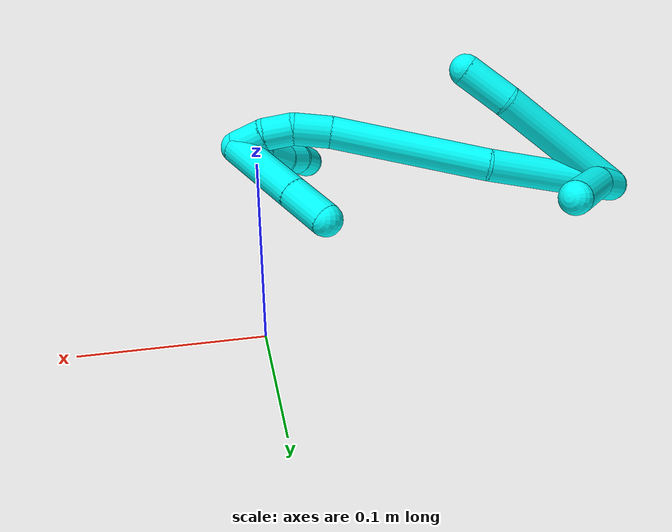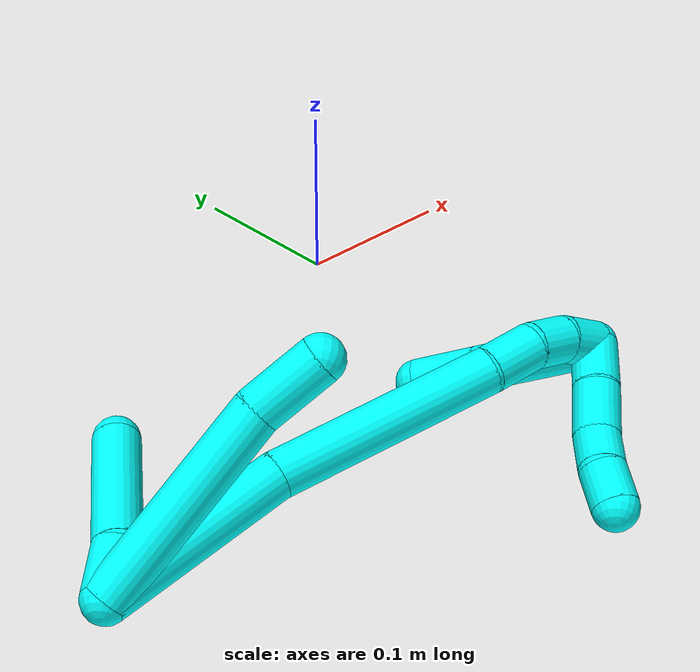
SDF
<sdf version="1.7">
 <world name="default">
  <model name="3">
   <static>0</static>
   <link name="3">
    <collision name="collision-cylinder-e_1_2_8">
     <pose>-0.018829 -0.035523 0.038641 0.743376 -0.344425 -0.135395</pose>
     <geometry><cylinder><radius>0.0125</radius><length>0.111526</length></cylinder></geometry>
     <surface>
      <friction><ode><mu>1.16</mu><mu2>1.16</mu2><slip1>0</slip1><slip2>0</slip2></ode></friction>
      <contact><ode><kp>1e+06</kp><kd>1</kd><max_vel>0</max_vel><min_depth>0.001</min_depth></ode></contact>
     </surface>
    </collision>
    <visual name="visual-cylinder-e_1_2_8">
     <pose>-0.018829 -0.035523 0.038641 0.743376 -0.344425 -0.135395</pose>
     <geometry><cylinder><radius>0.0125</radius><length>0.111526</length></cylinder></geometry>
     <material><ambient>0.003922 1 0.996078 1</ambient></material>
    </visual>
    <collision name="collision-cylinder-e_2_8_6">
     <pose>-0.043737 -0.086447 0.087075 1.00447 -0.321567 -0.177676</pose>
     <geometry><cylinder><radius>0.0125</radius><length>0.038474</length></cylinder></geometry>
     <surface>
      <friction><ode><mu>1.16</mu><mu2>1.16</mu2><slip1>0</slip1><slip2>0</slip2></ode></friction>
      <contact><ode><kp>1e+06</kp><kd>1</kd><max_vel>0</max_vel><min_depth>0.001</min_depth></ode></contact>
     </surface>
    </collision>
    <visual name="visual-cylinder-e_2_8_6">
     <pose>-0.043737 -0.086447 0.087075 1.00447 -0.321567 -0.177676</pose>
     <geometry><cylinder><radius>0.0125</radius><length>0.038474</length></cylinder></geometry>
     <material><ambient>0.003922 1 0.996078 1</ambient></material>
    </visual>
    <collision name="collision-cylinder-e_1_2_9">
     <pose>8.7e-05 -0.000165 0.014457 0.011401 0.006035 3.4e-05</pose>
     <geometry><cylinder><radius>0.0125</radius><length>0.028916</length></cylinder></geometry>
     <surface>
      <friction><ode><mu>1.16</mu><mu2>1.16</mu2><slip1>0</slip1><slip2>0</slip2></ode></friction>
      <contact><ode><kp>1e+06</kp><kd>1</kd><max_vel>0</max_vel><min_depth>0.001</min_depth></ode></contact>
     </surface>
    </collision>
    <visual name="visual-cylinder-e_1_2_9">
     <pose>8.7e-05 -0.000165 0.014457 0.011401 0.006035 3.4e-05</pose>
     <geometry><cylinder><radius>0.0125</radius><length>0.028916</length></cylinder></geometry>
     <material><ambient>0.003922 1 0.996078 1</ambient></material>
    </visual>
    <collision name="collision-cylinder-e_2_9_5">
     <pose>0.005131 0.007471 0.063233 -0.223488 0.139916 -0.015726</pose>
     <geometry><cylinder><radius>0.0125</radius><length>0.071084</length></cylinder></geometry>
     <surface>
      <friction><ode><mu>1.16</mu><mu2>1.16</mu2><slip1>0</slip1><slip2>0</slip2></ode></friction>
      <contact><ode><kp>1e+06</kp><kd>1</kd><max_vel>0</max_vel><min_depth>0.001</min_depth></ode></contact>
     </surface>
    </collision>
    <visual name="visual-cylinder-e_2_9_5">
     <pose>0.005131 0.007471 0.063233 -0.223488 0.139916 -0.015726</pose>
     <geometry><cylinder><radius>0.0125</radius><length>0.071084</length></cylinder></geometry>
     <material><ambient>0.003922 1 0.996078 1</ambient></material>
    </visual>
    <collision name="collision-cylinder-e_1_2_10">
     <pose>0.006396 -0.034796 0.037524 0.747701 0.124335 0.04883</pose>
     <geometry><cylinder><radius>0.0125</radius><length>0.103145</length></cylinder></geometry>
     <surface>
      <friction><ode><mu>1.16</mu><mu2>1.16</mu2><slip1>0</slip1><slip2>0</slip2></ode></friction>
      <contact><ode><kp>1e+06</kp><kd>1</kd><max_vel>0</max_vel><min_depth>0.001</min_depth></ode></contact>
     </surface>
    </collision>
    <visual name="visual-cylinder-e_1_2_10">
     <pose>0.006396 -0.034796 0.037524 0.747701 0.124335 0.04883</pose>
     <geometry><cylinder><radius>0.0125</radius><length>0.103145</length></cylinder></geometry>
     <material><ambient>0.003922 1 0.996078 1</ambient></material>
    </visual>
    <collision name="collision-cylinder-e_2_10_11">
     <pose>0.019204 -0.11953 0.109859 0.962018 0.104947 0.054808</pose>
     <geometry><cylinder><radius>0.0125</radius><length>0.122422</length></cylinder></geometry>
     <surface>
      <friction><ode><mu>1.16</mu><mu2>1.16</mu2><slip1>0</slip1><slip2>0</slip2></ode></friction>
      <contact><ode><kp>1e+06</kp><kd>1</kd><max_vel>0</max_vel><min_depth>0.001</min_depth></ode></contact>
     </surface>
    </collision>
    <visual name="visual-cylinder-e_2_10_11">
     <pose>0.019204 -0.11953 0.109859 0.962018 0.104947 0.054808</pose>
     <geometry><cylinder><radius>0.0125</radius><length>0.122422</length></cylinder></geometry>
     <material><ambient>0.003922 1 0.996078 1</ambient></material>
    </visual>
    <collision name="collision-cylinder-e_3_11_12">
     <pose>0.028618 -0.179898 0.154274 0.826675 0.208704 0.091808</pose>
     <geometry><cylinder><radius>0.0125</radius><length>0.028983</length></cylinder></geometry>
     <surface>
      <friction><ode><mu>1.16</mu><mu2>1.16</mu2><slip1>0</slip1><slip2>0</slip2></ode></friction>
      <contact><ode><kp>1e+06</kp><kd>1</kd><max_vel>0</max_vel><min_depth>0.001</min_depth></ode></contact>
     </surface>
    </collision>
    <visual name="visual-cylinder-e_3_11_12">
     <pose>0.028618 -0.179898 0.154274 0.826675 0.208704 0.091808</pose>
     <geometry><cylinder><radius>0.0125</radius><length>0.028983</length></cylinder></geometry>
     <material><ambient>0.003922 1 0.996078 1</ambient></material>
    </visual>
    <collision name="collision-cylinder-e_4_12_13">
     <pose>0.036941 -0.197924 0.170013 0.891242 0.498801 0.242136</pose>
     <geometry><cylinder><radius>0.0125</radius><length>0.022242</length></cylinder></geometry>
     <surface>
      <friction><ode><mu>1.16</mu><mu2>1.16</mu2><slip1>0</slip1><slip2>0</slip2></ode></friction>
      <contact><ode><kp>1e+06</kp><kd>1</kd><max_vel>0</max_vel><min_depth>0.001</min_depth></ode></contact>
     </surface>
    </collision>
    <visual name="visual-cylinder-e_4_12_13">
     <pose>0.036941 -0.197924 0.170013 0.891242 0.498801 0.242136</pose>
     <geometry><cylinder><radius>0.0125</radius><length>0.022242</length></cylinder></geometry>
     <material><ambient>0.003922 1 0.996078 1</ambient></material>
    </visual>
    <collision name="collision-cylinder-e_5_13_1">
     <pose>0.050161 -0.212945 0.18029 1.06222 0.748858 0.45372</pose>
     <geometry><cylinder><radius>0.0125</radius><length>0.023209</length></cylinder></geometry>
     <surface>
      <friction><ode><mu>1.16</mu><mu2>1.16</mu2><slip1>0</slip1><slip2>0</slip2></ode></friction>
      <contact><ode><kp>1e+06</kp><kd>1</kd><max_vel>0</max_vel><min_depth>0.001</min_depth></ode></contact>
     </surface>
    </collision>
    <visual name="visual-cylinder-e_5_13_1">
     <pose>0.050161 -0.212945 0.18029 1.06222 0.748858 0.45372</pose>
     <geometry><cylinder><radius>0.0125</radius><length>0.023209</length></cylinder></geometry>
     <material><ambient>0.003922 1 0.996078 1</ambient></material>
    </visual>
    <collision name="collision-cylinder-e_1_1_14">
     <pose>0.058512 -0.220994 0.170234 3.0976 0.031743 1.25002</pose>
     <geometry><cylinder><radius>0.0125</radius><length>0.02843</length></cylinder></geometry>
     <surface>
      <friction><ode><mu>1.16</mu><mu2>1.16</mu2><slip1>0</slip1><slip2>0</slip2></ode></friction>
      <contact><ode><kp>1e+06</kp><kd>1</kd><max_vel>0</max_vel><min_depth>0.001</min_depth></ode></contact>
     </surface>
    </collision>
    <visual name="visual-cylinder-e_1_1_14">
     <pose>0.058512 -0.220994 0.170234 3.0976 0.031743 1.25002</pose>
     <geometry><cylinder><radius>0.0125</radius><length>0.02843</length></cylinder></geometry>
     <material><ambient>0.003922 1 0.996078 1</ambient></material>
    </visual>
    <collision name="collision-cylinder-e_2_14_15">
     <pose>0.060933 -0.221562 0.141715 -3.13768 0.136654 -3.08438</pose>
     <geometry><cylinder><radius>0.0125</radius><length>0.02892</length></cylinder></geometry>
     <surface>
      <friction><ode><mu>1.16</mu><mu2>1.16</mu2><slip1>0</slip1><slip2>0</slip2></ode></friction>
      <contact><ode><kp>1e+06</kp><kd>1</kd><max_vel>0</max_vel><min_depth>0.001</min_depth></ode></contact>
     </surface>
    </collision>
    <visual name="visual-cylinder-e_2_14_15">
     <pose>0.060933 -0.221562 0.141715 -3.13768 0.136654 -3.08438</pose>
     <geometry><cylinder><radius>0.0125</radius><length>0.02892</length></cylinder></geometry>
     <material><ambient>0.003922 1 0.996078 1</ambient></material>
    </visual>
    <collision name="collision-cylinder-e_3_15_16">
     <pose>0.06242 -0.222844 0.11732 3.00949 -0.047535 -0.69001</pose>
     <geometry><cylinder><radius>0.0125</radius><length>0.020341</length></cylinder></geometry>
     <surface>
      <friction><ode><mu>1.16</mu><mu2>1.16</mu2><slip1>0</slip1><slip2>0</slip2></ode></friction>
      <contact><ode><kp>1e+06</kp><kd>1</kd><max_vel>0</max_vel><min_depth>0.001</min_depth></ode></contact>
     </surface>
    </collision>
    <visual name="visual-cylinder-e_3_15_16">
     <pose>0.06242 -0.222844 0.11732 3.00949 -0.047535 -0.69001</pose>
     <geometry><cylinder><radius>0.0125</radius><length>0.020341</length></cylinder></geometry>
     <material><ambient>0.003922 1 0.996078 1</ambient></material>
    </visual>
    <collision name="collision-cylinder-e_4_16_4">
     <pose>0.063476 -0.227263 0.09664 2.85899 0.138417 0.906893</pose>
     <geometry><cylinder><radius>0.0125</radius><length>0.022309</length></cylinder></geometry>
     <surface>
      <friction><ode><mu>1.16</mu><mu2>1.16</mu2><slip1>0</slip1><slip2>0</slip2></ode></friction>
      <contact><ode><kp>1e+06</kp><kd>1</kd><max_vel>0</max_vel><min_depth>0.001</min_depth></ode></contact>
     </surface>
    </collision>
    <visual name="visual-cylinder-e_4_16_4">
     <pose>0.063476 -0.227263 0.09664 2.85899 0.138417 0.906893</pose>
     <geometry><cylinder><radius>0.0125</radius><length>0.022309</length></cylinder></geometry>
     <material><ambient>0.003922 1 0.996078 1</ambient></material>
    </visual>
    <collision name="collision-cylinder-e_1_1_17">
     <pose>0.065277 -0.188789 0.183396 -1.60349 0.224529 -0.231928</pose>
     <geometry><cylinder><radius>0.0125</radius><length>0.064819</length></cylinder></geometry>
     <surface>
      <friction><ode><mu>1.16</mu><mu2>1.16</mu2><slip1>0</slip1><slip2>0</slip2></ode></friction>
      <contact><ode><kp>1e+06</kp><kd>1</kd><max_vel>0</max_vel><min_depth>0.001</min_depth></ode></contact>
     </surface>
    </collision>
    <visual name="visual-cylinder-e_1_1_17">
     <pose>0.065277 -0.188789 0.183396 -1.60349 0.224529 -0.231928</pose>
     <geometry><cylinder><radius>0.0125</radius><length>0.064819</length></cylinder></geometry>
     <material><ambient>0.003922 1 0.996078 1</ambient></material>
    </visual>
    <collision name="collision-cylinder-e_2_17_3">
     <pose>0.076391 -0.140069 0.181729 -1.60776 0.223471 -0.231813</pose>
     <geometry><cylinder><radius>0.0125</radius><length>0.035181</length></cylinder></geometry>
     <surface>
      <friction><ode><mu>1.16</mu><mu2>1.16</mu2><slip1>0</slip1><slip2>0</slip2></ode></friction>
      <contact><ode><kp>1e+06</kp><kd>1</kd><max_vel>0</max_vel><min_depth>0.001</min_depth></ode></contact>
     </surface>
    </collision>
    <visual name="visual-cylinder-e_2_17_3">
     <pose>0.076391 -0.140069 0.181729 -1.60776 0.223471 -0.231813</pose>
     <geometry><cylinder><radius>0.0125</radius><length>0.035181</length></cylinder></geometry>
     <material><ambient>0.003922 1 0.996078 1</ambient></material>
    </visual>
    <collision name="collision-sphere-3">
     <pose>0.08029 -0.122928 0.181095 0 -0 0</pose>
     <geometry><sphere><radius>0.0125</radius></sphere></geometry>
     <surface>
      <friction><ode><mu>1.16</mu><mu2>1.16</mu2><slip1>0</slip1><slip2>0</slip2></ode></friction>
      <contact><ode><kp>1e+06</kp><kd>1</kd><max_vel>0</max_vel><min_depth>0.001</min_depth></ode></contact>
     </surface>
    </collision>
    <visual name="visual-sphere-3">
     <pose>0.08029 -0.122928 0.181095 0 -0 0</pose>
     <geometry><sphere><radius>0.0125</radius></sphere></geometry>
     <material><ambient>0.003922 1 0.996078 1</ambient></material>
    </visual>
    <collision name="collision-sphere-17">
     <pose>0.072493 -0.15721 0.182363 0 -0 0</pose>
     <geometry><sphere><radius>0.0125</radius></sphere></geometry>
     <surface>
      <friction><ode><mu>1.16</mu><mu2>1.16</mu2><slip1>0</slip1><slip2>0</slip2></ode></friction>
      <contact><ode><kp>1e+06</kp><kd>1</kd><max_vel>0</max_vel><min_depth>0.001</min_depth></ode></contact>
     </surface>
    </collision>
    <visual name="visual-sphere-17">
     <pose>0.072493 -0.15721 0.182363 0 -0 0</pose>
     <geometry><sphere><radius>0.0125</radius></sphere></geometry>
     <material><ambient>0.003922 1 0.996078 1</ambient></material>
    </visual>
    <collision name="collision-sphere-4">
     <pose>0.065015 -0.230344 0.08603 0 -0 0</pose>
     <geometry><sphere><radius>0.0125</radius></sphere></geometry>
     <surface>
      <friction><ode><mu>1.16</mu><mu2>1.16</mu2><slip1>0</slip1><slip2>0</slip2></ode></friction>
      <contact><ode><kp>1e+06</kp><kd>1</kd><max_vel>0</max_vel><min_depth>0.001</min_depth></ode></contact>
     </surface>
    </collision>
    <visual name="visual-sphere-4">
     <pose>0.065015 -0.230344 0.08603 0 -0 0</pose>
     <geometry><sphere><radius>0.0125</radius></sphere></geometry>
     <material><ambient>0.003922 1 0.996078 1</ambient></material>
    </visual>
    <collision name="collision-sphere-16">
     <pose>0.061937 -0.224182 0.107249 0 -0 0</pose>
     <geometry><sphere><radius>0.0125</radius></sphere></geometry>
     <surface>
      <friction><ode><mu>1.16</mu><mu2>1.16</mu2><slip1>0</slip1><slip2>0</slip2></ode></friction>
      <contact><ode><kp>1e+06</kp><kd>1</kd><max_vel>0</max_vel><min_depth>0.001</min_depth></ode></contact>
     </surface>
    </collision>
    <visual name="visual-sphere-16">
     <pose>0.061937 -0.224182 0.107249 0 -0 0</pose>
     <geometry><sphere><radius>0.0125</radius></sphere></geometry>
     <material><ambient>0.003922 1 0.996078 1</ambient></material>
    </visual>
    <collision name="collision-sphere-15">
     <pose>0.062903 -0.221506 0.12739 0 -0 0</pose>
     <geometry><sphere><radius>0.0125</radius></sphere></geometry>
     <surface>
      <friction><ode><mu>1.16</mu><mu2>1.16</mu2><slip1>0</slip1><slip2>0</slip2></ode></friction>
      <contact><ode><kp>1e+06</kp><kd>1</kd><max_vel>0</max_vel><min_depth>0.001</min_depth></ode></contact>
     </surface>
    </collision>
    <visual name="visual-sphere-15">
     <pose>0.062903 -0.221506 0.12739 0 -0 0</pose>
     <geometry><sphere><radius>0.0125</radius></sphere></geometry>
     <material><ambient>0.003922 1 0.996078 1</ambient></material>
    </visual>
    <collision name="collision-sphere-14">
     <pose>0.058963 -0.221618 0.15604 0 -0 0</pose>
     <geometry><sphere><radius>0.0125</radius></sphere></geometry>
     <surface>
      <friction><ode><mu>1.16</mu><mu2>1.16</mu2><slip1>0</slip1><slip2>0</slip2></ode></friction>
      <contact><ode><kp>1e+06</kp><kd>1</kd><max_vel>0</max_vel><min_depth>0.001</min_depth></ode></contact>
     </surface>
    </collision>
    <visual name="visual-sphere-14">
     <pose>0.058963 -0.221618 0.15604 0 -0 0</pose>
     <geometry><sphere><radius>0.0125</radius></sphere></geometry>
     <material><ambient>0.003922 1 0.996078 1</ambient></material>
    </visual>
    <collision name="collision-sphere-1">
     <pose>0.058061 -0.220369 0.184428 0 -0 0</pose>
     <geometry><sphere><radius>0.0125</radius></sphere></geometry>
     <surface>
      <friction><ode><mu>1.16</mu><mu2>1.16</mu2><slip1>0</slip1><slip2>0</slip2></ode></friction>
      <contact><ode><kp>1e+06</kp><kd>1</kd><max_vel>0</max_vel><min_depth>0.001</min_depth></ode></contact>
     </surface>
    </collision>
    <visual name="visual-sphere-1">
     <pose>0.058061 -0.220369 0.184428 0 -0 0</pose>
     <geometry><sphere><radius>0.0125</radius></sphere></geometry>
     <material><ambient>0.003922 1 0.996078 1</ambient></material>
    </visual>
    <collision name="collision-sphere-13">
     <pose>0.042261 -0.205521 0.176151 0 -0 0</pose>
     <geometry><sphere><radius>0.0125</radius></sphere></geometry>
     <surface>
      <friction><ode><mu>1.16</mu><mu2>1.16</mu2><slip1>0</slip1><slip2>0</slip2></ode></friction>
      <contact><ode><kp>1e+06</kp><kd>1</kd><max_vel>0</max_vel><min_depth>0.001</min_depth></ode></contact>
     </surface>
    </collision>
    <visual name="visual-sphere-13">
     <pose>0.042261 -0.205521 0.176151 0 -0 0</pose>
     <geometry><sphere><radius>0.0125</radius></sphere></geometry>
     <material><ambient>0.003922 1 0.996078 1</ambient></material>
    </visual>
    <collision name="collision-sphere-12">
     <pose>0.031621 -0.190328 0.163876 0 -0 0</pose>
     <geometry><sphere><radius>0.0125</radius></sphere></geometry>
     <surface>
      <friction><ode><mu>1.16</mu><mu2>1.16</mu2><slip1>0</slip1><slip2>0</slip2></ode></friction>
      <contact><ode><kp>1e+06</kp><kd>1</kd><max_vel>0</max_vel><min_depth>0.001</min_depth></ode></contact>
     </surface>
    </collision>
    <visual name="visual-sphere-12">
     <pose>0.031621 -0.190328 0.163876 0 -0 0</pose>
     <geometry><sphere><radius>0.0125</radius></sphere></geometry>
     <material><ambient>0.003922 1 0.996078 1</ambient></material>
    </visual>
    <collision name="collision-sphere-11">
     <pose>0.025616 -0.169468 0.144671 0 -0 0</pose>
     <geometry><sphere><radius>0.0125</radius></sphere></geometry>
     <surface>
      <friction><ode><mu>1.16</mu><mu2>1.16</mu2><slip1>0</slip1><slip2>0</slip2></ode></friction>
      <contact><ode><kp>1e+06</kp><kd>1</kd><max_vel>0</max_vel><min_depth>0.001</min_depth></ode></contact>
     </surface>
    </collision>
    <visual name="visual-sphere-11">
     <pose>0.025616 -0.169468 0.144671 0 -0 0</pose>
     <geometry><sphere><radius>0.0125</radius></sphere></geometry>
     <material><ambient>0.003922 1 0.996078 1</ambient></material>
    </visual>
    <collision name="collision-sphere-8">
     <pose>-0.037658 -0.071046 0.077282 0 -0 0</pose>
     <geometry><sphere><radius>0.0125</radius></sphere></geometry>
     <surface>
      <friction><ode><mu>1.16</mu><mu2>1.16</mu2><slip1>0</slip1><slip2>0</slip2></ode></friction>
      <contact><ode><kp>1e+06</kp><kd>1</kd><max_vel>0</max_vel><min_depth>0.001</min_depth></ode></contact>
     </surface>
    </collision>
    <visual name="visual-sphere-8">
     <pose>-0.037658 -0.071046 0.077282 0 -0 0</pose>
     <geometry><sphere><radius>0.0125</radius></sphere></geometry>
     <material><ambient>0.003922 1 0.996078 1</ambient></material>
    </visual>
    <collision name="collision-sphere-2">
     <geometry><sphere><radius>0.0125</radius></sphere></geometry>
     <surface>
      <friction><ode><mu>1.16</mu><mu2>1.16</mu2><slip1>0</slip1><slip2>0</slip2></ode></friction>
      <contact><ode><kp>1e+06</kp><kd>1</kd><max_vel>0</max_vel><min_depth>0.001</min_depth></ode></contact>
     </surface>
    </collision>
    <visual name="visual-sphere-2">
     <geometry><sphere><radius>0.0125</radius></sphere></geometry>
     <material><ambient>0.003922 1 0.996078 1</ambient></material>
    </visual>
    <collision name="collision-sphere-9">
     <pose>0.000175 -0.00033 0.028913 0 -0 0</pose>
     <geometry><sphere><radius>0.0125</radius></sphere></geometry>
     <surface>
      <friction><ode><mu>1.16</mu><mu2>1.16</mu2><slip1>0</slip1><slip2>0</slip2></ode></friction>
      <contact><ode><kp>1e+06</kp><kd>1</kd><max_vel>0</max_vel><min_depth>0.001</min_depth></ode></contact>
     </surface>
    </collision>
    <visual name="visual-sphere-9">
     <pose>0.000175 -0.00033 0.028913 0 -0 0</pose>
     <geometry><sphere><radius>0.0125</radius></sphere></geometry>
     <material><ambient>0.003922 1 0.996078 1</ambient></material>
    </visual>
    <collision name="collision-sphere-6">
     <pose>-0.049817 -0.101848 0.096867 0 -0 0</pose>
     <geometry><sphere><radius>0.0125</radius></sphere></geometry>
     <surface>
      <friction><ode><mu>1.16</mu><mu2>1.16</mu2><slip1>0</slip1><slip2>0</slip2></ode></friction>
      <contact><ode><kp>1e+06</kp><kd>1</kd><max_vel>0</max_vel><min_depth>0.001</min_depth></ode></contact>
     </surface>
    </collision>
    <visual name="visual-sphere-6">
     <pose>-0.049817 -0.101848 0.096867 0 -0 0</pose>
     <geometry><sphere><radius>0.0125</radius></sphere></geometry>
     <material><ambient>0.003922 1 0.996078 1</ambient></material>
    </visual>
    <collision name="collision-sphere-5">
     <pose>0.010088 0.015271 0.097552 0 -0 0</pose>
     <geometry><sphere><radius>0.0125</radius></sphere></geometry>
     <surface>
      <friction><ode><mu>1.16</mu><mu2>1.16</mu2><slip1>0</slip1><slip2>0</slip2></ode></friction>
      <contact><ode><kp>1e+06</kp><kd>1</kd><max_vel>0</max_vel><min_depth>0.001</min_depth></ode></contact>
     </surface>
    </collision>
    <visual name="visual-sphere-5">
     <pose>0.010088 0.015271 0.097552 0 -0 0</pose>
     <geometry><sphere><radius>0.0125</radius></sphere></geometry>
     <material><ambient>0.003922 1 0.996078 1</ambient></material>
    </visual>
    <collision name="collision-sphere-10">
     <pose>0.012792 -0.069592 0.075048 0 -0 0</pose>
     <geometry><sphere><radius>0.0125</radius></sphere></geometry>
     <surface>
      <friction><ode><mu>1.16</mu><mu2>1.16</mu2><slip1>0</slip1><slip2>0</slip2></ode></friction>
      <contact><ode><kp>1e+06</kp><kd>1</kd><max_vel>0</max_vel><min_depth>0.001</min_depth></ode></contact>
     </surface>
    </collision>
    <visual name="visual-sphere-10">
     <pose>0.012792 -0.069592 0.075048 0 -0 0</pose>
     <geometry><sphere><radius>0.0125</radius></sphere></geometry>
     <material><ambient>0.003922 1 0.996078 1</ambient></material>
    </visual>
    <inertial>
     <pose>0.020588 -0.105333 0.098787 0 -0 0</pose>
     <mass>0.75</mass>
     <inertia>
      <ixx>0.000437</ixx>
      <ixy>0</ixy>
      <ixz>0</ixz>
      <iyy>0.000273</iyy>
      <iyz>0</iyz>
      <izz>0.000264</izz>
     </inertia>
    </inertial>
   </link>
   <pose>-0.288895 -0.169816 0.01228 -0.433244 1.21821 0.26215</pose>
  </model>
 </world>
</sdf>
